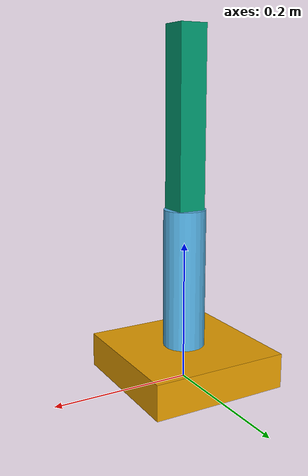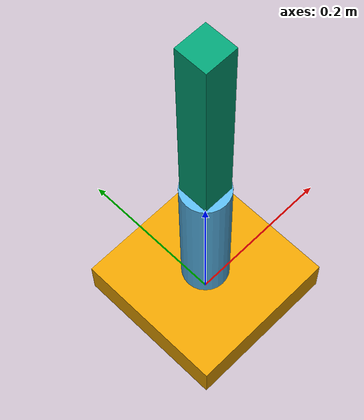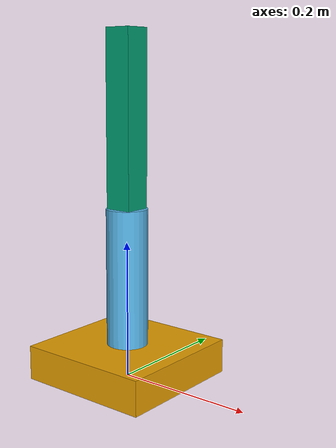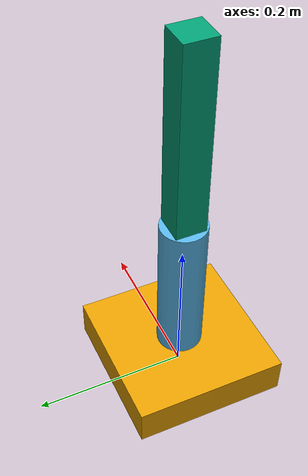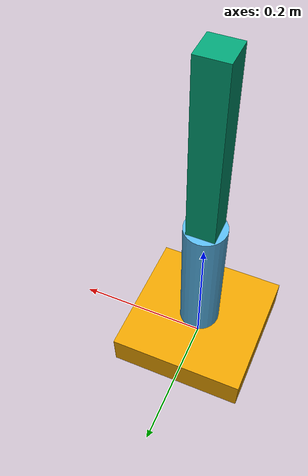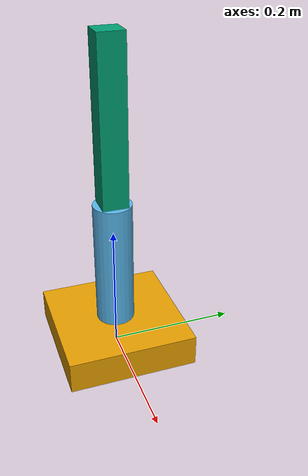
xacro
<?xml version="1.0"?>
<robot xmlns:xacro="http://www.ros.org/wiki/xacro" name="my_robot">

  <link name="base_link">
    <visual>
      <origin xyz="0 0 0.025"/>
      <geometry><box size="0.2 0.2 0.05"/></geometry>
    </visual>
    <collision>
      <origin xyz="0 0 0.025"/>
      <geometry><box size="0.2 0.2 0.05"/></geometry>
    </collision>
    <!-- No inertial: KDL rejects one on the root link, and without a free joint MuJoCo welds
         the root to the world anyway. A mobile base carries its mass on a fixed child link. -->
  </link>

  <link name="link1">
    <visual>
      <origin xyz="0 0 0.1"/>
      <geometry><cylinder radius="0.03" length="0.2"/></geometry>
    </visual>
    <collision>
      <origin xyz="0 0 0.1"/>
      <geometry><cylinder radius="0.03" length="0.2"/></geometry>
    </collision>
    <inertial>
      <origin xyz="0 0 0.1"/>
      <mass value="0.5"/>
      <inertia ixx="0.00178" ixy="0" ixz="0" iyy="0.00178" iyz="0" izz="0.000225"/>
    </inertial>
  </link>

  <link name="link2">
    <visual>
      <origin xyz="0 0 0.125"/>
      <geometry><box size="0.04 0.04 0.25"/></geometry>
    </visual>
    <collision>
      <origin xyz="0 0 0.125"/>
      <geometry><box size="0.04 0.04 0.25"/></geometry>
    </collision>
    <inertial>
      <origin xyz="0 0 0.125"/>
      <mass value="0.3"/>
      <inertia ixx="0.00160" ixy="0" ixz="0" iyy="0.00160" iyz="0" izz="0.00008"/>
    </inertial>
  </link>

  <!-- Velocity limits must be non-zero: joint_trajectory_controller and MoveIt read them. -->
  <joint name="joint1" type="revolute">
    <parent link="base_link"/>
    <child link="link1"/>
    <origin xyz="0 0 0.05"/>
    <axis xyz="0 0 1"/>
    <limit lower="-3.14159" upper="3.14159" effort="10" velocity="2.0"/>
  </joint>

  <joint name="joint2" type="revolute">
    <parent link="link1"/>
    <child link="link2"/>
    <origin xyz="0 0 0.2"/>
    <axis xyz="0 1 0"/>
    <limit lower="-1.5708" upper="1.5708" effort="10" velocity="2.0"/>
  </joint>

  <!-- ros2_control hardware: none (visualization only) or mujoco. Defaults keep the plain
       URDF free of hardware, which is also what the MJCF generator expands. -->
  <xacro:arg name="ros2_control" default="none"/>
  <!-- MJCF scene loaded by the MuJoCo hardware plugin. -->
  <xacro:arg name="mujoco_model" default=""/>
  <xacro:arg name="headless" default="false"/>

  <!-- initial is the joint position MuJoCo starts at. Keep it strictly inside the joint
       limits: exactly on a limit, numerical drift trips the joint limiter. -->
  <xacro:macro name="position_joint" params="name initial:=0.0">
    <joint name="${name}">
      <command_interface name="position"/>
      <state_interface name="position">
        <param name="initial_value">${initial}</param>
      </state_interface>
      <state_interface name="velocity"/>
    </joint>
  </xacro:macro>

  <xacro:if value="${'$(arg ros2_control)' == 'mujoco'}">
    <ros2_control name="MujocoSystem" type="system">
      <hardware>
        <plugin>mujoco_ros2_control/MujocoSystemInterface</plugin>
        <param name="mujoco_model">$(arg mujoco_model)</param>
        <param name="headless">$(arg headless)</param>
      </hardware>
      <!-- Each commanded joint needs a MuJoCo actuator of the same name in mujoco_inputs.xml. -->
      <xacro:position_joint name="joint1"/>
      <xacro:position_joint name="joint2"/>
    </ros2_control>
  </xacro:if>

</robot>
